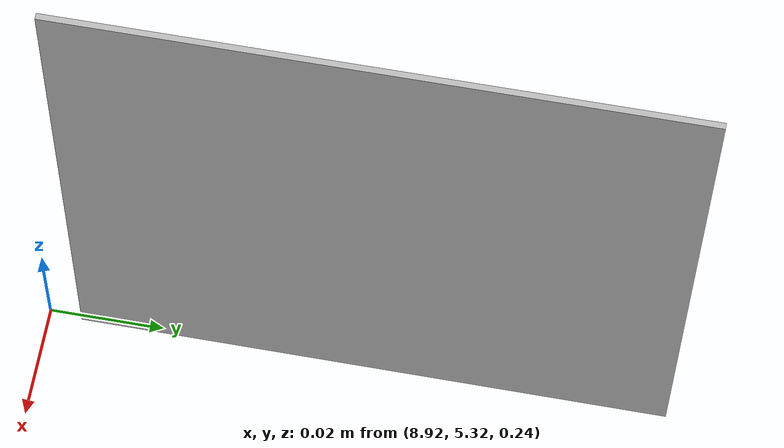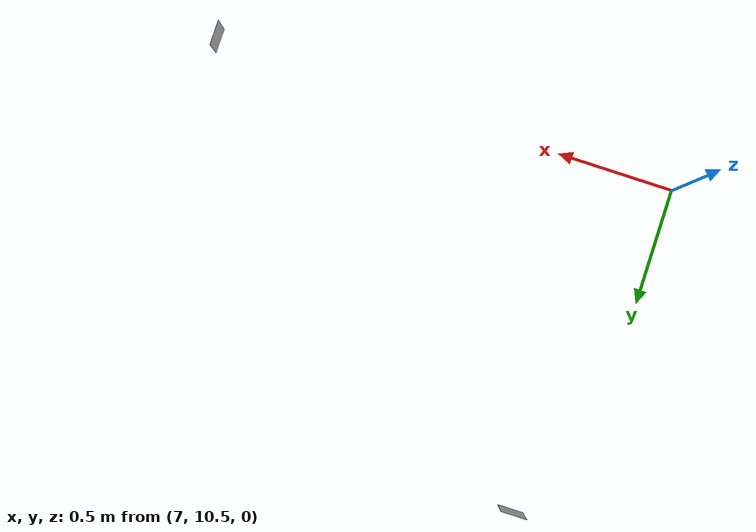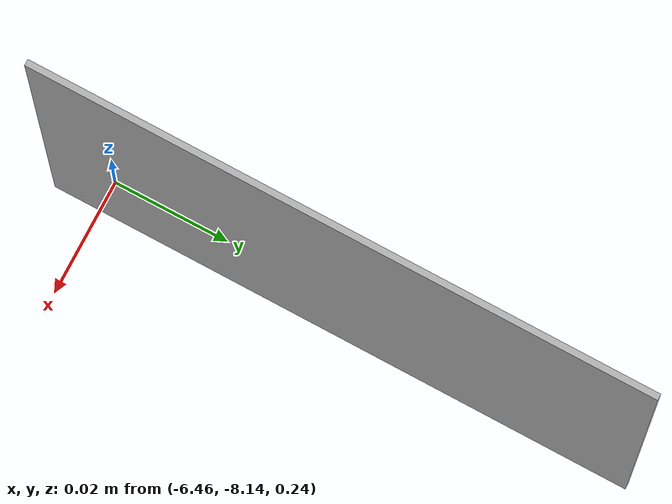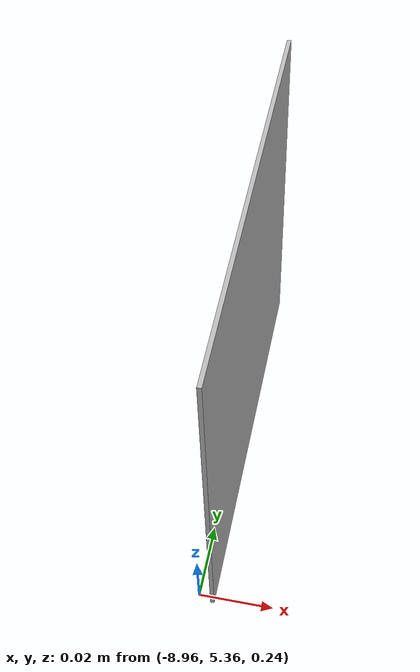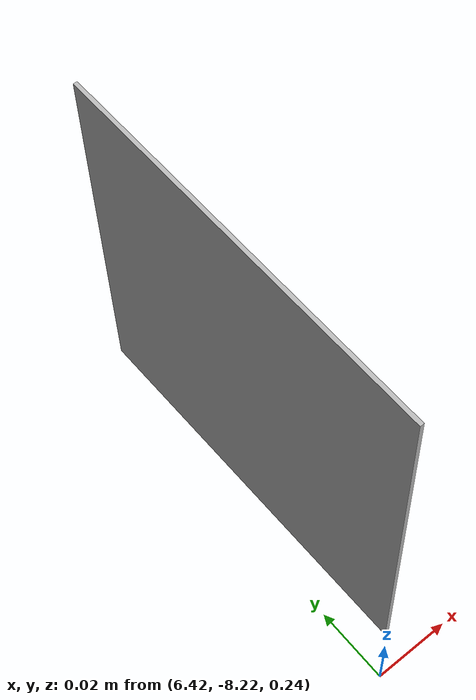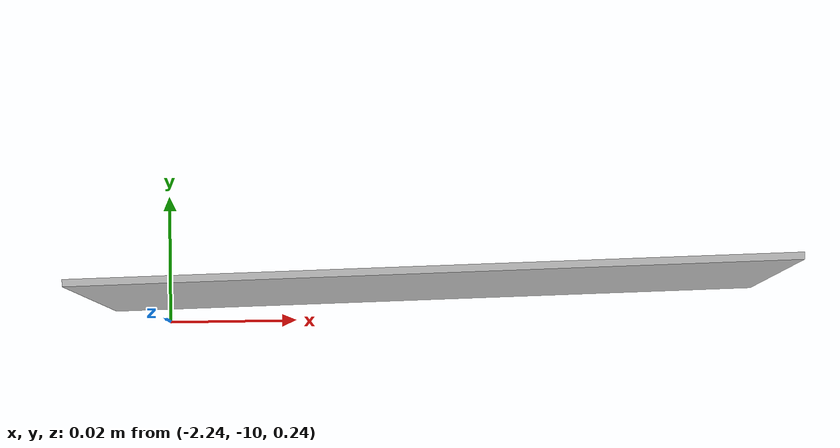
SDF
<sdf version="1.7">
 <world name="default">
  <light name="sun" type="directional">
   <pose>0 0 10 0 -0 0</pose>
   <diffuse>1 1 1 1</diffuse>
   <specular>0.5 0.5 0.5 1</specular>
   <attenuation>
    <range>2000</range>
    <constant>0.7</constant>
    <linear>0.005</linear>
    <quadratic>0.0005</quadratic>
   </attenuation>
   <direction>-0.5 0.1 -0.9</direction>
   <spot><inner_angle>0</inner_angle><outer_angle>0</outer_angle><falloff>0</falloff></spot>
  </light>
  <gravity>0 0 -9.8</gravity>
  <magnetic_field>6e-06 2.3e-05 -4.2e-05</magnetic_field>
  <atmosphere type="adiabatic"/>
  <physics type="ode">
   <max_step_size>0.001</max_step_size>
   <real_time_factor>1</real_time_factor>
   <real_time_update_rate>1000</real_time_update_rate>
  </physics>
  <scene><ambient>1 1 1 1</ambient><background>1 1 1 1</background><shadows>1</shadows></scene>
  <audio><device>default</device></audio>
  <spherical_coordinates>
   <surface_model>EARTH_WGS84</surface_model>
   <latitude_deg>0</latitude_deg>
   <longitude_deg>0</longitude_deg>
   <elevation>0</elevation>
   <heading_deg>0</heading_deg>
  </spherical_coordinates>
  <model name="qr_chambre1">
   <static>1</static>
   <link name="qr_chambre1_link">
    <pose>0 0 0.3 3.14159 1.57079 3.14159</pose>
    <visual name="visual_qr_chambre1">
     <cast_shadows>0</cast_shadows>
     <geometry><box><size>0.1 0.1 0.001</size></box></geometry>
     <material>
      <script>
       <uri>model://qr_chambre1/materials/scripts</uri>
       <uri>model://qr_chambre1/materials/textures</uri>
       <name>qr_chambre1/qr_chambre1</name>
      </script>
     </material>
    </visual>
    <collision name="collision_qr_chambre1"><geometry><box><size>0.1 0.1 0.001</size></box></geometry></collision>
   </link>
   <pose>8.92851 10.5542 -0 0 -0 0</pose>
  </model>
  <model name="qr_chambre2">
   <static>1</static>
   <link name="qr_chambre2_link">
    <pose>0 0 0.3 3.14159 1.57079 3.14159</pose>
    <visual name="visual_qr_chambre2">
     <cast_shadows>0</cast_shadows>
     <geometry><box><size>0.1 0.1 0.001</size></box></geometry>
     <material>
      <script>
       <uri>model://qr_chambre2/materials/scripts</uri>
       <uri>model://qr_chambre2/materials/textures</uri>
       <name>qr_chambre2/qr_chambre2</name>
      </script>
     </material>
    </visual>
    <collision name="collision_qr_chambre2"><geometry><box><size>0.1 0.1 0.001</size></box></geometry></collision>
   </link>
   <pose>8.92487 5.37735 -0 0 -0 0</pose>
  </model>
  <model name="qr_chambre3">
   <static>1</static>
   <link name="qr_chambre3_link">
    <pose>0 0 0.3 3.14159 1.57079 3.14159</pose>
    <visual name="visual_qr_chambre3">
     <cast_shadows>0</cast_shadows>
     <geometry><box><size>0.1 0.1 0.001</size></box></geometry>
     <material>
      <script>
       <uri>model://qr_chambre3/materials/scripts</uri>
       <uri>model://qr_chambre3/materials/textures</uri>
       <name>qr_chambre3/qr_chambre3</name>
      </script>
     </material>
    </visual>
    <collision name="collision_qr_chambre3"><geometry><box><size>0.1 0.1 0.001</size></box></geometry></collision>
   </link>
   <pose>6.42527 -8.1656 -0 0 -0 0</pose>
  </model>
  <model name="qr_chambre4">
   <static>1</static>
   <link name="qr_chambre4_link">
    <pose>0 0 0.3 3.14159 1.57079 3.14159</pose>
    <visual name="visual_qr_chambre4">
     <cast_shadows>0</cast_shadows>
     <geometry><box><size>0.1 0.1 0.001</size></box></geometry>
     <material>
      <script>
       <uri>model://qr_chambre4/materials/scripts</uri>
       <uri>model://qr_chambre4/materials/textures</uri>
       <name>qr_chambre4/qr_chambre4</name>
      </script>
     </material>
    </visual>
    <collision name="collision_qr_chambre4"><geometry><box><size>0.1 0.1 0.001</size></box></geometry></collision>
   </link>
   <pose>6.42707 -22.1835 -0 0 -0 0</pose>
  </model>
  <model name="qr_SalledAttente">
   <static>1</static>
   <link name="qr_SalledAttente_link">
    <pose>0 0 0.3 3.14159 1.57079 3.14159</pose>
    <visual name="visual_qr_SalledAttente">
     <cast_shadows>0</cast_shadows>
     <geometry><box><size>0.1 0.1 0.001</size></box></geometry>
     <material>
      <script>
       <uri>model://qr_SalledAttente/materials/scripts</uri>
       <uri>model://qr_SalledAttente/materials/textures</uri>
       <name>qr_SalledAttente/qr_SalledAttente</name>
      </script>
     </material>
    </visual>
    <collision name="collision_qr_SalledAttente">
     <geometry><box><size>0.1 0.1 0.001</size></box></geometry>
    </collision>
   </link>
   <pose>-6.4552 -25.8447 -0 0 -0 0</pose>
  </model>
  <model name="qr_chambre5">
   <static>1</static>
   <link name="qr_chambre5_link">
    <pose>0 0 0.3 3.14159 1.57079 3.14159</pose>
    <visual name="visual_qr_chambre5">
     <cast_shadows>0</cast_shadows>
     <geometry><box><size>0.1 0.1 0.001</size></box></geometry>
     <material>
      <script>
       <uri>model://qr_chambre5/materials/scripts</uri>
       <uri>model://qr_chambre5/materials/textures</uri>
       <name>qr_chambre5/qr_chambre5</name>
      </script>
     </material>
    </visual>
    <collision name="collision_qr_chambre5"><geometry><box><size>0.1 0.1 0.001</size></box></geometry></collision>
   </link>
   <pose>4.53693 -25.9553 -0 0 -0 -1.56588</pose>
  </model>
  <model name="qr_chambre6">
   <static>1</static>
   <link name="qr_chambre6_link">
    <pose>0 0 0.3 3.14159 1.57079 3.14159</pose>
    <visual name="visual_qr_chambre6">
     <cast_shadows>0</cast_shadows>
     <geometry><box><size>0.1 0.1 0.001</size></box></geometry>
     <material>
      <script>
       <uri>model://qr_chambre6/materials/scripts</uri>
       <uri>model://qr_chambre6/materials/textures</uri>
       <name>qr_chambre6/qr_chambre6</name>
      </script>
     </material>
    </visual>
    <collision name="collision_qr_chambre6"><geometry><box><size>0.1 0.1 0.001</size></box></geometry></collision>
   </link>
   <pose>-6.44502 -22.1595 -0 0 -0 0</pose>
  </model>
  <model name="qr_chambre7">
   <static>1</static>
   <link name="qr_chambre7_link">
    <pose>0 0 0.3 3.14159 1.57079 3.14159</pose>
    <visual name="visual_qr_chambre7">
     <cast_shadows>0</cast_shadows>
     <geometry><box><size>0.1 0.1 0.001</size></box></geometry>
     <material>
      <script>
       <uri>model://qr_chambre7/materials/scripts</uri>
       <uri>model://qr_chambre7/materials/textures</uri>
       <name>qr_chambre7/qr_chambre7</name>
      </script>
     </material>
    </visual>
    <collision name="collision_qr_chambre7"><geometry><box><size>0.1 0.1 0.001</size></box></geometry></collision>
   </link>
   <pose>-6.4541 -8.09683 -0 0 -0 0</pose>
  </model>
  <model name="qr_chambre8">
   <static>1</static>
   <link name="qr_chambre8_link">
    <pose>0 0 0.3 3.14159 1.57079 3.14159</pose>
    <visual name="visual_qr_chambre8">
     <cast_shadows>0</cast_shadows>
     <geometry><box><size>0.1 0.1 0.001</size></box></geometry>
     <material>
      <script>
       <uri>model://qr_chambre8/materials/scripts</uri>
       <uri>model://qr_chambre8/materials/textures</uri>
       <name>qr_chambre8/qr_chambre8</name>
      </script>
     </material>
    </visual>
    <collision name="collision_qr_chambre8"><geometry><box><size>0.1 0.1 0.001</size></box></geometry></collision>
   </link>
   <pose>-8.95511 5.40462 -0 0 -0 0</pose>
  </model>
  <model name="qr_chambre9">
   <static>1</static>
   <link name="qr_chambre9_link">
    <pose>0 0 0.3 3.14159 1.57079 3.14159</pose>
    <visual name="visual_qr_chambre9">
     <cast_shadows>0</cast_shadows>
     <geometry><box><size>0.1 0.1 0.001</size></box></geometry>
     <material>
      <script>
       <uri>model://qr_chambre9/materials/scripts</uri>
       <uri>model://qr_chambre9/materials/textures</uri>
       <name>qr_chambre9/qr_chambre9</name>
      </script>
     </material>
    </visual>
    <collision name="collision_qr_chambre9"><geometry><box><size>0.1 0.1 0.001</size></box></geometry></collision>
   </link>
   <pose>-8.95319 10.5813 -0 0 -0 0</pose>
  </model>
  <model name="qr_SalleConsultation1">
   <static>1</static>
   <link name="qr_SalleConsultation1_link">
    <pose>0 0 0.3 3.14159 1.57079 3.14159</pose>
    <visual name="visual_qr_SalleConsultation1">
     <cast_shadows>0</cast_shadows>
     <geometry><box><size>0.1 0.1 0.001</size></box></geometry>
     <material>
      <script>
       <uri>model://qr_SalleConsultation1/materials/scripts</uri>
       <uri>model://qr_SalleConsultation1/materials/textures</uri>
       <name>qr_SalleConsultation1/qr_SalleConsultation1</name>
      </script>
     </material>
    </visual>
    <collision name="collision_qr_SalleConsultation1">
     <geometry><box><size>0.1 0.1 0.001</size></box></geometry>
    </collision>
   </link>
   <pose>2.15703 0.048685 -0 0 0 -1.54504</pose>
  </model>
  <model name="qr_SalleConsultation2">
   <static>1</static>
   <link name="qr_SalleConsultation2_link">
    <pose>0 0 0.3 3.14159 1.57079 3.14159</pose>
    <visual name="visual_qr_SalleConsultation2">
     <cast_shadows>0</cast_shadows>
     <geometry><box><size>0.1 0.1 0.001</size></box></geometry>
     <material>
      <script>
       <uri>model://qr_SalleConsultation2/materials/scripts</uri>
       <uri>model://qr_SalleConsultation2/materials/textures</uri>
       <name>qr_SalleConsultation2/qr_SalleConsultation2</name>
      </script>
     </material>
    </visual>
    <collision name="collision_qr_SalleConsultation2">
     <geometry><box><size>0.1 0.1 0.001</size></box></geometry>
    </collision>
   </link>
   <pose>-2.19422 0.04638 -0 0 0 -1.55439</pose>
  </model>
  <model name="qr_Toilette1">
   <static>1</static>
   <link name="qr_Toilette1_link">
    <pose>0 0 0.3 3.14159 1.57079 3.14159</pose>
    <visual name="visual_qr_Toilette1">
     <cast_shadows>0</cast_shadows>
     <geometry><box><size>0.1 0.1 0.001</size></box></geometry>
     <material>
      <script>
       <uri>model://qr_Toilette1/materials/scripts</uri>
       <uri>model://qr_Toilette1/materials/textures</uri>
       <name>qr_Toilette1/qr_Toilette1</name>
      </script>
     </material>
    </visual>
    <collision name="collision_qr_Toilette1">
     <geometry><box><size>0.1 0.1 0.001</size></box></geometry>
    </collision>
   </link>
   <pose>2.16447 -10.0029 -0 0 -0 -1.57948</pose>
  </model>
  <model name="qr_Toilette2">
   <static>1</static>
   <link name="qr_Toilette2_link">
    <pose>0 0 0.3 3.14159 1.57079 3.14159</pose>
    <visual name="visual_qr_Toilette2">
     <cast_shadows>0</cast_shadows>
     <geometry><box><size>0.1 0.1 0.001</size></box></geometry>
     <material>
      <script>
       <uri>model://qr_Toilette2/materials/scripts</uri>
       <uri>model://qr_Toilette2/materials/textures</uri>
       <name>qr_Toilette2/qr_Toilette2</name>
      </script>
     </material>
    </visual>
    <collision name="collision_qr_Toilette2">
     <geometry><box><size>0.1 0.1 0.001</size></box></geometry>
    </collision>
   </link>
   <pose>-2.19802 -9.99687 -0 0 0 -1.54861</pose>
  </model>
  <model name="qr_SalledeRadiologie">
   <static>1</static>
   <link name="qr_SalledeRadiologie_link">
    <pose>0 0 0.3 3.14159 1.57079 3.14159</pose>
    <visual name="visual_qr_SalledeRadiologie">
     <cast_shadows>0</cast_shadows>
     <geometry><box><size>0.1 0.1 0.001</size></box></geometry>
     <material>
      <script>
       <uri>model://qr_SalledeRadiologie/materials/scripts</uri>
       <uri>model://qr_SalledeRadiologie/materials/textures</uri>
       <name>qr_SalledeRadiologie/qr_SalledeRadiologie</name>
      </script>
     </material>
    </visual>
    <collision name="collision_qr_SalledeRadiologie">
     <geometry><box><size>0.1 0.1 0.001</size></box></geometry>
    </collision>
   </link>
   <pose>2.14374 -15.9502 -0 0 -0 -1.54316</pose>
  </model>
  <model name="qr_SalledeStockage2">
   <static>1</static>
   <link name="qr_SalledeStockage2_link">
    <pose>0 0 0.0125 3.14159 1.57079 3.14159</pose>
    <visual name="visual_qr_SalledeStockage2">
     <cast_shadows>0</cast_shadows>
     <geometry><box><size>0.1 0.1 0.001</size></box></geometry>
     <material>
      <script>
       <uri>model://qr_SalledeStockage2/materials/scripts</uri>
       <uri>model://qr_SalledeStockage2/materials/textures</uri>
       <name>qr_SalledeStockage2/qr_SalledeStockage2</name>
      </script>
     </material>
    </visual>
    <collision name="collision_qr_SalledeStockage2">
     <geometry><box><size>0.1 0.1 0.001</size></box></geometry>
    </collision>
   </link>
   <pose>-7.34217 11.9114 0.3 0 0 -1.54985</pose>
  </model>
  <model name="qr_SalledeStockage1">
   <static>1</static>
   <link name="qr_SalledeStockage1_link">
    <pose>0 0 0.0125 3.14159 1.57079 3.14159</pose>
    <visual name="visual_qr_SalledeStockage1">
     <cast_shadows>0</cast_shadows>
     <geometry><box><size>0.1 0.1 0.001</size></box></geometry>
     <material>
      <script>
       <uri>model://qr_SalledeStockage1/materials/scripts</uri>
       <uri>model://qr_SalledeStockage1/materials/textures</uri>
       <name>qr_SalledeStockage1/qr_SalledeStockage1</name>
      </script>
     </material>
    </visual>
    <collision name="collision_qr_SalledeStockage1">
     <geometry><box><size>0.1 0.1 0.001</size></box></geometry>
    </collision>
   </link>
   <pose>7.29769 11.9139 0.3 0 0 -1.5609</pose>
  </model>
  <model name="qr_ChambreSoins">
   <static>1</static>
   <link name="qr_ChambreSoins_link">
    <pose>0 0 0.0125 3.14159 1.57079 3.14159</pose>
    <visual name="visual_qr_ChambreSoins">
     <cast_shadows>0</cast_shadows>
     <geometry><box><size>0.1 0.1 0.001</size></box></geometry>
     <material>
      <script>
       <uri>model://qr_ChambreSoins/materials/scripts</uri>
       <uri>model://qr_ChambreSoins/materials/textures</uri>
       <name>qr_ChambreSoins/qr_ChambreSoins</name>
      </script>
     </material>
    </visual>
    <collision name="collision_qr_ChambreSoins">
     <geometry><box><size>0.1 0.1 0.001</size></box></geometry>
    </collision>
   </link>
   <pose>-2.1794 -15.9523 0.3 0 0 -1.55825</pose>
  </model>
  <model name="qr_chambre5_0">
   <static>1</static>
   <link name="qr_chambre5_link">
    <pose>0 0 0.3 3.14159 1.57079 3.14159</pose>
    <visual name="visual_qr_chambre5">
     <cast_shadows>0</cast_shadows>
     <geometry><box><size>0.1 0.1 0.001</size></box></geometry>
     <material>
      <script>
       <uri>model://qr_chambre5/materials/scripts</uri>
       <uri>model://qr_chambre5/materials/textures</uri>
       <name>qr_chambre5/qr_chambre5</name>
      </script>
     </material>
    </visual>
    <collision name="collision_qr_chambre5"><geometry><box><size>0.1 0.1 0.001</size></box></geometry></collision>
   </link>
   <pose>-1.63806 -32.0737 0 0 -0 1.57682</pose>
  </model>
 </world>
</sdf>
